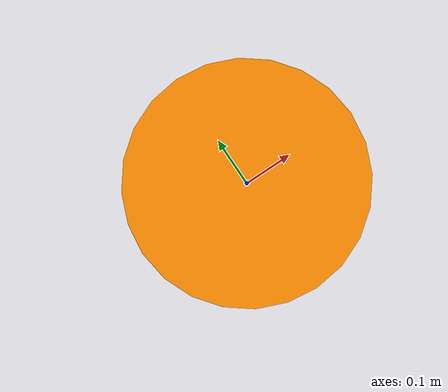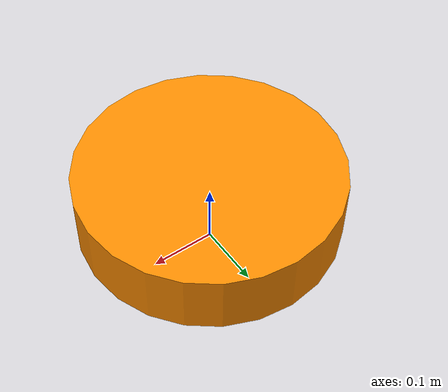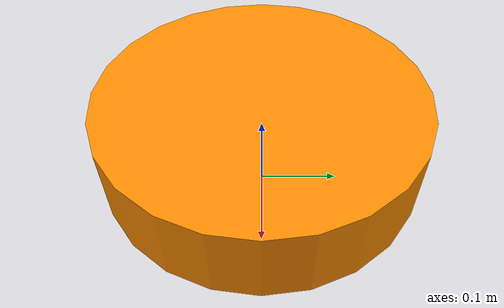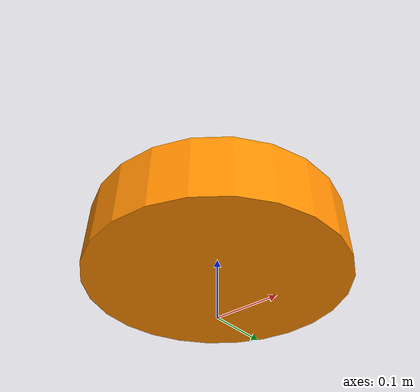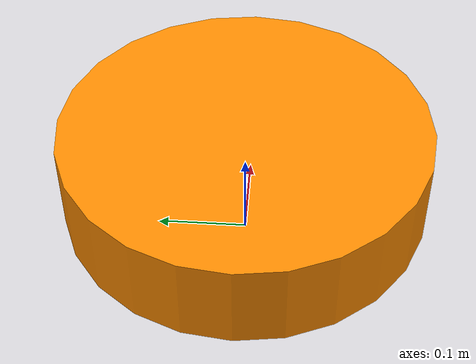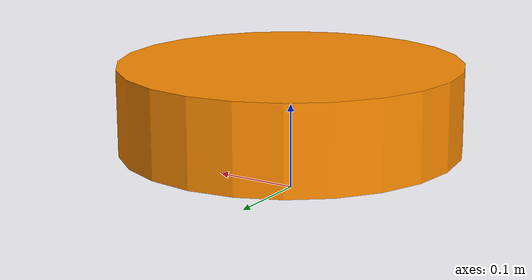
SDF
<?xml version='1.0'?>
<sdf version='1.4'>
  <model name="small_cylinder_static_red">
    <link name="link" >
      <pose>0 0 0.1 0 0 0</pose>
      <inertial>
        <mass>0.5</mass>
        <inertia>
          <!-- http://answers.gazebosim.org/question/4372/the-inertia-matrix-explained/ -->
          <ixx>0.005914</ixx>    <!-- for a box: ixx = 0.083 * mass * (3*r*r + h*h) -->
          <ixy>0.0</ixy>         <!-- for a box: ixy = 0 -->
          <ixz>0.0</ixz>         <!-- for a box: ixz = 0 -->
          <iyy>0.005914</iyy>    <!-- for a box: iyy = 0.083 * mass * (3*r*r + h*h) -->
          <iyz>0.0</iyz>         <!-- for a box: iyz = 0 -->
          <izz>0.010000</izz>    <!-- for a box: izz = 0.5 * mass * (r*r) -->
        </inertia>
      </inertial>
      <collision name="collision">
        <geometry>
          <cylinder>
            <length>0.2</length>
            <radius>0.1</radius>
          </cylinder>
        </geometry>
      </collision>
      <visual name="visual">
        <geometry>
          <cylinder>
            <length>0.1</length>
            <radius>0.2</radius>
          </cylinder>
        </geometry>
        <material>
           <ambient>1 0.549 0 1</ambient> <!-- dark Orange -->
          <diffuse>1 0.549 0 1</diffuse>
          <specular>0.1 0.1 0.1 1</specular>
          <emissive>0 0 0 0</emissive>
        </material>
      </visual>
    </link>
  </model>
</sdf>
